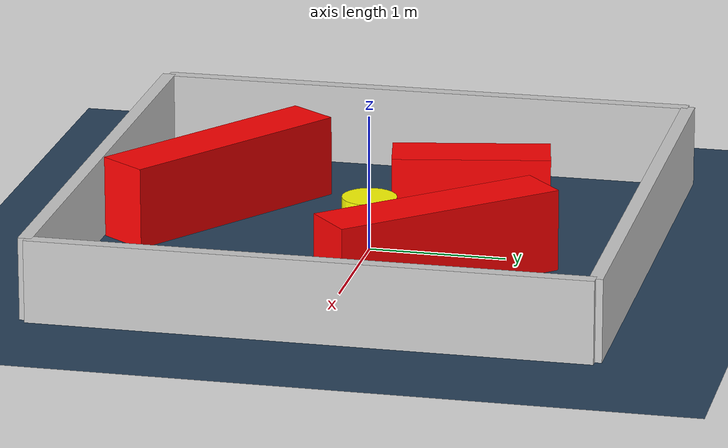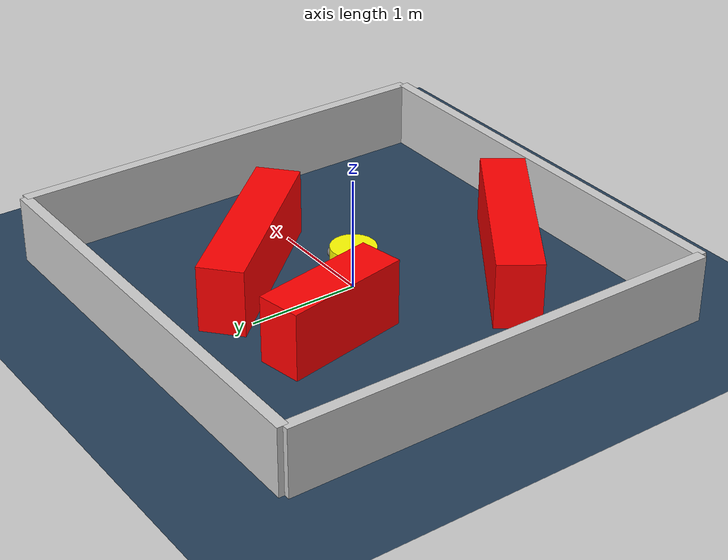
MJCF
<?xml version="1.0" ?>
<mujoco model="generated_environment">
  <option timestep="0.01" integrator="RK4" cone="elliptic"/>
  <default>
    <geom density="1"/>
  </default>
  <asset>
    <texture builtin="gradient" height="3072" rgb1="0.3 0.5 0.7" rgb2="0 0 0" type="skybox" width="512"/>
    <texture builtin="checker" height="300" mark="edge" markrgb="0.8 0.8 0.8" name="groundplane" rgb1="0.2 0.3 0.4" rgb2="0.1 0.2 0.3" type="2d" width="300"/>
    <material name="groundplane" reflectance="0.2" texrepeat="5 5" texture="groundplane" texuniform="true"/>
    <material name="robot" rgba="0.0 1.0 0.0 1"/>
  </asset>
  <worldbody>
    <light dir="0 0 -1" directional="true" pos="0 0 1.5"/>
    <geom condim="4" friction="1.0 0.005 0.001" material="groundplane" name="floor" size="0 0 0.05" type="plane"/>
    <body name="walls">
      <geom name="wall_1" condim="4" pos="-2.0 0.0 0.3" rgba="0.800000011920929 0.800000011920929 0.800000011920929 1.0" size="0.05 2.0 0.3" type="box"/>
      <geom name="wall_2" condim="4" pos="2.0 0.0 0.3" rgba="0.800000011920929 0.800000011920929 0.800000011920929 1.0" size="0.05 2.0 0.3" type="box"/>
      <geom name="wall_3" condim="4" pos="0.0 -2.0 0.3" rgba="0.800000011920929 0.800000011920929 0.800000011920929 1.0" size="2.0 0.05 0.3" type="box"/>
      <geom name="wall_4" condim="4" pos="0.0 2.0 0.3" rgba="0.800000011920929 0.800000011920929 0.800000011920929 1.0" size="2.0 0.05 0.3" type="box"/>
    </body>
    <body name="robot">
      <joint name="joint_x" type="slide" pos="0 0 0" axis="1 0 0"/>
      <joint name="joint_y" type="slide" pos="0 0 0" axis="0 1 0"/>
      <geom name="robot" type="sphere" pos="0.3 0.0 0.2" size="0.05" mass="5." friction="1.0 0.005 0.0001" condim="4" rgba="0.5 0.5 0.5 1.0"/>
      <site name="sensor_ball"/>
    </body>
    <body name="obstacle_movable_1">
      <geom name="obstacle_movable_1" condim="4" pos="0.0 0.0 0.2" euler="0 0 0.0" friction="1.0 0.005 0.001" rgba="1.0 1.0 0.0 1.0" size="0.2 0.2 0.0" type="cylinder" mass="0.1"/>
      <joint type="free"/>
    </body>
    <body name="obstacle_2_static">
      <geom name="obstacle_2_static" condim="4" pos="-0.5854791544161011 0.6306138489364181 0.3" euler="0 0 280.7714500752114" friction="1.0 0.005 0.001" rgba="1 0 0 1" size="0.5761739815795853 0.2 0.3" type="box"/>
    </body>
    <body name="obstacle_3_static">
      <geom name="obstacle_3_static" condim="4" pos="-0.5338521201453825 -1.2447076558016534 0.3" euler="0 0 324.9234095281796" friction="1.0 0.005 0.001" rgba="1 0 0 1" size="0.9285739959814789 0.2 0.3" type="box"/>
    </body>
    <body name="obstacle_4_static">
      <geom name="obstacle_4_static" condim="4" pos="0.6059653153751812 0.6209194085966894 0.3" euler="0 0 131.78654072650713" friction="1.0 0.005 0.001" rgba="1 0 0 1" size="0.8832980759285414 0.2 0.3" type="box"/>
    </body>
  </worldbody>
  <actuator>
    <motor name="actuator_x" joint="joint_x" gear="1" ctrlrange="-1 1"/>
    <motor name="actuator_y" joint="joint_y" gear="1" ctrlrange="-1 1"/>
  </actuator>
</mujoco>
